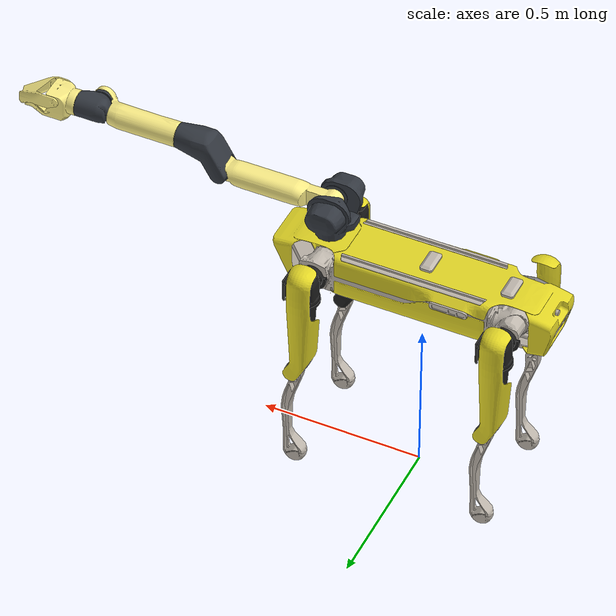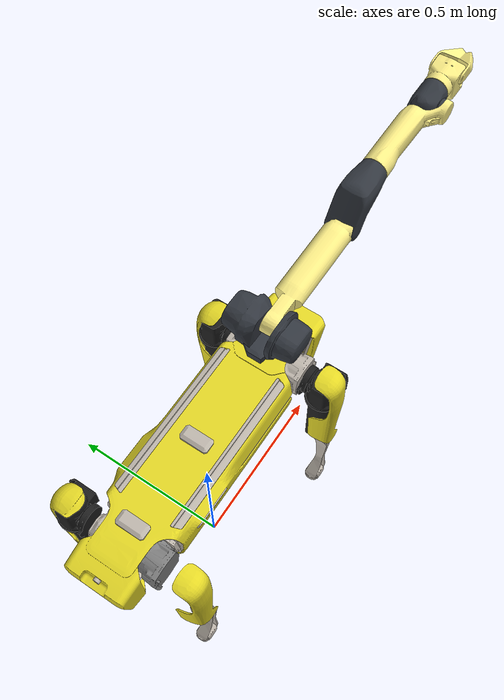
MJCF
<mujoco model="spot">
    <compiler angle="radian" meshdir="obj_meshes" texturedir="obj_meshes" autolimits="true"/>
		<option integrator="implicit"/>

		<default>
		  <default class="spot">
		    <material specular="0.5" shininess="0.25"/>
		    <joint armature="0.1" damping="1" axis="0 0 1" range="-2.8973 2.8973"/>
		    <general dyntype="none" biastype="affine" ctrlrange="-2.8973 2.8973" forcerange="-87 87"/>
			</default>
			<default class="visual">
		    <geom group="2" type="mesh" contype="0" conaffinity="0"/>
		  </default>
		  <default class="collision">
		    <geom group="3" type="mesh"/>
		  </default>
		</default>
    <asset>
		  	<texture type="2d" name="body_others" file="body_others.png"/>
				<material name="material_body_others" texture="body_others" specular="1.0" shininess="0.0"/>
				<texture type="2d" name="yellow_parts" file="yellow_parts.png"/>
				<material name="material_yellow_parts_body" texture="yellow_parts" specular="1.0" shininess="0.0"/>
        <texture type="2d" name="lleg" file="lleg.png"/>
        <material name="material_lleg" texture="lleg" specular="1.0" shininess="0.0"/>
        <texture type="2d" name="black_leg" file="black_leg.png"/>
        <material name="material_leg_black" texture="black_leg" specular="1.0" shininess="0.0"/>
        <texture type="2d" name="yellow_leg" file="yellow_leg.png"/>
        <material name="material_leg_yellow" texture="yellow_leg" specular="1.0" shininess="0.0"/>
        <texture type="2d" name="hip" file="hip.png"/>
        <material name="material_hip" texture="hip" specular="1.0" shininess="0.0"/>
        <material name="yellow" rgba="1 0.945 0.537 1"/>
        <material name="black" rgba="0.2 0.21960784 0.25098039 1"/>

				<mesh file="spot_body_0.obj"/>
				<mesh file="spot_body_1.obj"/>
        <mesh name="fl_hip" file="fl_hip.obj" />
        <mesh name="fr_hip" file="fr_hip.obj" />
        <mesh name="hl_hip" file="hl_hip.obj" />
        <mesh name="hr_hip" file="hr_hip.obj" />
        <mesh file="fl_uleg_0.obj"/>
        <mesh file="fl_uleg_1.obj"/>
        <mesh file="fr_uleg_0.obj"/>
        <mesh file="fr_uleg_1.obj"/>
        <mesh file="hl_uleg_0.obj"/>
        <mesh file="hl_uleg_1.obj"/>
        <mesh file="hr_uleg_0.obj" />
        <mesh file="hr_uleg_1.obj" />
        <mesh name="lleg" file="lleg.obj" />
        <mesh name="arm0_link_sh0" file="arm0_link_sh0.obj" />
        <mesh name="arm0_link_sh1" file="arm0_link_sh1.obj" />
        <mesh name="arm0_link_hr0" file="arm0_link_hr0.obj" />
        <mesh name="arm0_link_el0" file="arm0_link_el0.obj" />
        <mesh name="arm0_link_el1" file="arm0_link_el1.obj" />
        <mesh name="arm0_link_wr0" file="arm0_link_wr0.obj" />
        <mesh name="arm0_link_wr1" file="arm0_link_wr1.obj" />
        <mesh name="arm0_link_fngr" file="arm0_link_fngr.obj" />
    </asset>
    <worldbody>
        <body name="base" pos="0 0 0.7">
          <freejoint/>
          <geom mesh="spot_body_0" material="material_yellow_parts_body" class="visual"/>
          <geom mesh="spot_body_1" material="material_body_others" class="visual"/>
          <geom mesh="spot_body_0" class="collision"/>
          <geom mesh="spot_body_1" class="collision"/>
          <inertial pos="0 0 -0.00496172" quat="0 0.707107 0 0.707107" mass="16.7077" diaginertia="0.569454 0.549231 0.0815438" />
          <body name="fl.hip" pos="0.29785 0.055 0">
              <inertial pos="-0.0158674 0.00855842 9.03e-06" quat="-0.137996 0.694859 0.131743 0.693377" mass="1.13688" diaginertia="0.00172904 0.00166127 0.00114996" />
              <joint name="fl.hx" pos="0 0 0" axis="1 0 0" limited="true" range="-0.785398 0.785398" />
              <geom material="material_hip" mesh="fl_hip" class="visual"/>
              <geom mesh="fl_hip" class="collision"/>
              <body name="fl.uleg" pos="0 0.110945 0">
                  <inertial pos="0.00214442 -0.0111018 -0.078812" quat="0.998684 0.0454551 -0.0106253 -0.0212473" mass="2.2562" diaginertia="0.0269394 0.0260254 0.00298666" />
                  <joint name="fl.hy" pos="0 0 0" axis="0 1 0" limited="true" range="-0.898845 2.29511" />
                  <geom mesh="fl_uleg_0" material="material_leg_yellow" class="visual"/>
                  <geom mesh="fl_uleg_1" material="material_leg_black" class="visual"/>
                  <geom mesh="fl_uleg_0" class="collision"/>
                  <geom mesh="fl_uleg_1" class="collision"/>
                  <body name="fl.lleg" pos="0.025 0 -0.3205">
                      <inertial pos="0.0059736 0 -0.174664" quat="0.707099 -0.00339701 -0.00339701 0.707099" mass="0.33" diaginertia="0.00709946 0.00701419 0.000144656" />
                      <joint name="fl.kn" pos="0 0 0" axis="0 1 0" limited="true" range="-2.7929 -0.2471" />
                      <geom material="material_lleg" mesh="lleg" class="visual"/>
                      <geom mesh="lleg" class="collision"/>
                  </body>
              </body>
          </body>
          <body name="fr.hip" pos="0.29785 -0.055 0">
              <inertial pos="-0.0158674 -0.00855842 9.03e-06" quat="0.137996 0.694859 -0.131743 0.693377" mass="1.13688" diaginertia="0.00172904 0.00166127 0.00114996" />
              <joint name="fr.hx" pos="0 0 0" axis="1 0 0" limited="true" range="-0.785398 0.785398" />
              <geom material="material_hip" mesh="fr_hip" class="visual"/>
              <geom mesh="fr_hip" class="collision"/>
              <body name="fr.uleg" pos="0 -0.110945 0">
                  <inertial pos="0.00214442 0.0111018 -0.078812" quat="0.998684 -0.0454551 -0.0106253 0.0212473" mass="2.2562" diaginertia="0.0269394 0.0260254 0.00298666" />
                  <joint name="fr.hy" pos="0 0 0" axis="0 1 0" limited="true" range="-0.898845 2.29511" />
                  <geom mesh="fr_uleg_0" material="material_leg_yellow" class="visual"/>
                  <geom mesh="fr_uleg_1" material="material_leg_black" class="visual"/>
                  <geom mesh="fr_uleg_0" class="collision"/>
                  <geom mesh="fr_uleg_1" class="collision"/>
                  <body name="fr.lleg" pos="0.025 0 -0.3205">
                      <geom material="material_lleg" mesh="lleg" class="visual"/>
                      <geom mesh="lleg" class="collision"/>
                      <inertial pos="0.0059736 0 -0.174664" quat="0.707099 -0.00339701 -0.00339701 0.707099" mass="0.33" diaginertia="0.00709946 0.00701419 0.000144656" />
                      <joint name="fr.kn" pos="0 0 0" axis="0 1 0" limited="true" range="-2.7929 -0.2471" />
                  </body>
              </body>
          </body>
          <body name="hl.hip" pos="-0.29785 0.055 0">
              <inertial pos="0.0158674 0.00855842 9.03e-06" quat="0.131743 0.693377 -0.137996 0.694859" mass="1.13688" diaginertia="0.00172904 0.00166127 0.00114996" />
              <joint name="hl.hx" pos="0 0 0" axis="1 0 0" limited="true" range="-0.785398 0.785398" />
              <geom material="material_hip" mesh="hr_hip" class="visual"/>
              <geom mesh="hr_hip" class="collision"/>
              <body name="hl.uleg" pos="0 0.110945 0">
                  <inertial pos="0.00214442 -0.0111018 -0.078812" quat="0.998684 0.0454551 -0.0106253 -0.0212473" mass="2.2562" diaginertia="0.0269394 0.0260254 0.00298666" />
                  <joint name="hl.hy" pos="0 0 0" axis="0 1 0" limited="true" range="-0.898845 2.29511" />
                  <geom mesh="hl_uleg_0" material="material_leg_black" class="visual"/>
                  <geom mesh="hl_uleg_1" material="material_leg_yellow" class="visual"/>
                  <geom mesh="hl_uleg_0" class="collision"/>
                  <geom mesh="hl_uleg_1" class="collision"/>
                  <body name="hl.lleg" pos="0.025 0 -0.3205">
                      <inertial pos="0.0059736 0 -0.174664" quat="0.707099 -0.00339701 -0.00339701 0.707099" mass="0.33" diaginertia="0.00709946 0.00701419 0.000144656" />
                      <joint name="hl.kn" pos="0 0 0" axis="0 1 0" limited="true" range="-2.7929 -0.2471" />
                      <geom material="material_lleg" mesh="lleg" class="visual"/>
                      <geom mesh="lleg" class="collision"/>
                  </body>
              </body>
          </body>
          <body name="hr.hip" pos="-0.29785 -0.055 0">
              <inertial pos="0.0158674 -0.00855842 9.03e-06" quat="-0.131743 0.693377 0.137996 0.694859" mass="1.13688" diaginertia="0.00172904 0.00166127 0.00114996" />
              <joint name="hr.hx" pos="0 0 0" axis="1 0 0" limited="true" range="-0.785398 0.785398" />
              <geom type="mesh" contype="0" conaffinity="1" group="1" mesh="hr_hip" />
              <body name="hr.uleg" pos="0 -0.110945 0">
                  <inertial pos="0.00214442 0.0111018 -0.078812" quat="0.998684 -0.0454551 -0.0106253 0.0212473" mass="2.2562" diaginertia="0.0269394 0.0260254 0.00298666" />
                  <joint name="hr.hy" pos="0 0 0" axis="0 1 0" limited="true" range="-0.898845 2.29511" />
                  <geom mesh="hr_uleg_0" material="material_leg_yellow" class="visual"/>
                  <geom mesh="hr_uleg_1" material="material_leg_black" class="visual"/>
                  <geom mesh="hr_uleg_0" class="collision"/>
                  <geom mesh="hr_uleg_1" class="collision"/>
                  <body name="hr.lleg" pos="0.025 0 -0.3205">
                      <inertial pos="0.0059736 0 -0.174664" quat="0.707099 -0.00339701 -0.00339701 0.707099" mass="0.33" diaginertia="0.00709946 0.00701419 0.000144656" />
                      <joint name="hr.kn" pos="0 0 0" axis="0 1 0" limited="true" range="-2.7929 -0.2471" />
                      <geom material="material_lleg" mesh="lleg" class="visual"/>
                      <geom mesh="lleg" class="collision"/>
                  </body>
              </body>
          </body>
          <body name="arm0.link_sh0" pos="0.292 0 0.188">
              <inertial pos="-0.008399 0.000272 -0.024603" quat="0.710827 0.700855 0.0423863 -0.0416066" mass="1.9047" diaginertia="0.00891905 0.00728042 0.00492153" />
              <joint name="arm0.sh0" pos="0 0 0" axis="0 0 1" limited="true" range="-2.61799 3.14159" frictionloss="10" />
              <geom mesh="arm0_link_sh0" material="black" class="visual"/>
              <geom mesh="arm0_link_sh0" class="collision"/>
              <body name="arm0.link_sh1" pos="0 0 0">
                  <inertial pos="0.0808491 -0.00167243 0.00045644" quat="-0.00467017 0.708456 0.00702831 0.705705" mass="1.85702" diaginertia="0.0281997 0.0270454 0.00260818" />
                  <joint name="arm0.sh1" pos="0 0 0" axis="0 1 0" limited="true" range="-3.14159 0.523599" frictionloss="10" />
                  <geom mesh="arm0_link_sh1" material="black" class="visual"/>
                  <geom mesh="arm0_link_sh1" class="collision"/>
                  <geom mesh="arm0_link_hr0" material="yellow" class="visual"/>
                  <geom mesh="arm0_link_hr0" class="collision"/>
                  <body name="arm0.link_el0" pos="0.3385 0 0">
                      <inertial pos="0.0447662 -0.0027113 0.0499136" quat="0.0923782 0.888458 0.19384 0.40563" mass="0.94832" diaginertia="0.00286401 0.00265579 0.000960161" />
                      <joint name="arm0.el0" pos="0 0 0" axis="0 1 0" limited="true" range="0 3.14159" frictionloss="10" />
                      <geom mesh="arm0_link_el0" material="black" class="visual"/>
                      <geom mesh="arm0_link_el0" class="collision"/>
                      <body name="arm0.link_el1" pos="0.4033 0 0.075">
                          <inertial pos="-0.168671 -0.0161612 1.149e-05" quat="0.488034 0.425158 0.565043 0.511654" mass="1.01755" diaginertia="0.0169253 0.0168986 0.000746021" />
                          <joint name="arm0.el1" pos="0 0 0" axis="1 0 0" limited="true" range="-2.79253 2.79253" frictionloss="10" />
                          <geom mesh="arm0_link_el1" material="yellow" class="visual"/>
                          <geom mesh="arm0_link_el1" class="collision"/>
                          <body name="arm0.link_wr0" pos="0 0 0">
                              <inertial pos="0.00952465 -0.0114441 1.86e-06" quat="0.308237 0.652328 -0.273781 0.636005" mass="0.582637" diaginertia="0.000536182 0.000528639 0.000388399" />
                              <joint name="arm0.wr0" pos="0 0 0" axis="0 1 0" limited="true" range="-1.8326 1.8326" frictionloss="10" />
                              <geom mesh="arm0_link_wr0" material="black" class="visual"/>
                              <geom mesh="arm0_link_wr0" class="collision"/>
                              <body name="arm0.link_wr1" pos="0 0 0">
                                  <inertial pos="0.0975128 9.265e-05 -0.0112052" quat="0.592778 0.385047 0.386229 0.592605" mass="0.933353" diaginertia="0.00197018 0.00182151 0.00082476" />
                                  <joint name="arm0.wr1" pos="0 0 0" axis="1 0 0" limited="true" range="-2.87989 2.87979" frictionloss="10" />
                                  <geom mesh="arm0_link_wr1" material="yellow" class="visual"/>
                                  <geom mesh="arm0_link_wr1" class="collision"/>
                                  <body name="arm0.link_fngr" pos="0.11745 0 0.01482">
                                      <inertial pos="0.0356518 0.000672 -0.0122752" quat="0.00481109 0.567709 0.0124565 0.823121" mass="0.223833" diaginertia="0.000648792 0.000484516 0.000194933" />
                                      <joint name="arm0.f1x" pos="0 0 0" axis="0 1 0" limited="true" range="-1.5708 0" frictionloss="10" />
                                      <geom mesh="arm0_link_fngr" material="yellow" class="visual"/>
                                      <geom mesh="arm0_link_fngr" class="collision"/>
                                  </body>
                              </body>
                          </body>
                      </body>
                  </body>
              </body>
          </body>
        </body>
    </worldbody>
</mujoco>
